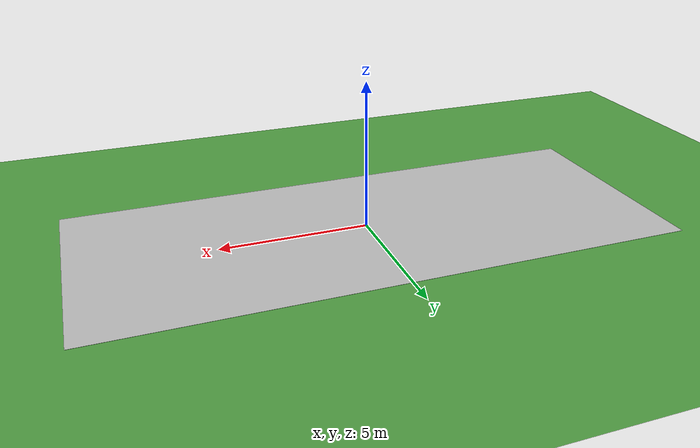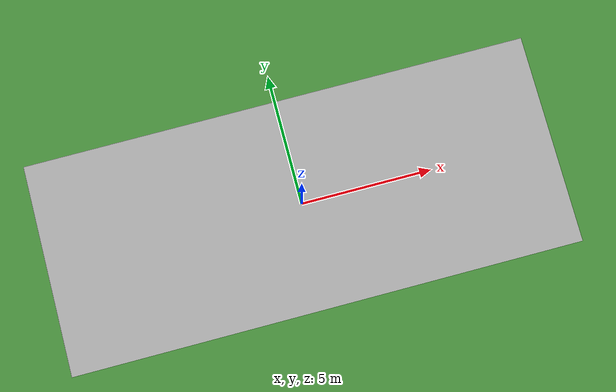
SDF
<?xml version="1.0" encoding="UTF-8"?>
<sdf version='1.5'>
  <world name='default'>
    <light name='sun' type='directional'>
      <cast_shadows>0</cast_shadows>
      <pose>0 0 10 0 -0 0</pose>
      <diffuse>0.8 0.8 0.8 1</diffuse>
      <specular>0.2 0.2 0.2 1</specular>
      <attenuation>
	<range>1000</range>
	<constant>0.9</constant>
	<linear>0.01</linear>
	<quadratic>0.001</quadratic>
      </attenuation>
      <direction>-0.5 0.1 -0.9</direction>
    </light>
    <scene>
      <sky>
	<clouds>
	  <speed>1</speed>
	</clouds>
      </sky>
    </scene>

    <physics type='ode'>
      <real_time_update_rate>1000</real_time_update_rate>
      <ode>
	<solver>
	  <type>quick</type>
	  <iters>70</iters>
	  <sor>1.3</sor>
	  <use_dynamic_moi_rescaling>0</use_dynamic_moi_rescaling>
	</solver>
	<constraints>
	  <cfm>0</cfm>
	  <erp>0.2</erp>
	  <contact_max_correcting_vel>100</contact_max_correcting_vel>
	  <contact_surface_layer>0.001</contact_surface_layer>
	</constraints>
      </ode>
      <max_step_size>0.001</max_step_size>
      <real_time_factor>1</real_time_factor>
      <gravity>0 0 -9.8</gravity>
      <magnetic_field>5.5645e-06 2.28758e-05 -4.23884e-05</magnetic_field>
    </physics>

    <scene>
      <ambient>0.4 0.4 0.4 1</ambient>
      <background>0.7 0.7 0.7 1</background>
      <shadows>1</shadows>
    </scene>

    <spherical_coordinates>
      <surface_model>EARTH_WGS84</surface_model>
      <latitude_deg>0</latitude_deg>
      <longitude_deg>0</longitude_deg>
      <elevation>0</elevation>
      <heading_deg>0</heading_deg>
    </spherical_coordinates>

    <!-- Grass -->
    <include>
      <uri>model://ground_grass</uri>
      <name>ground_grass</name>
      <pose>0 0 0 0 0 0</pose>
    </include>

    <!-- Track -->
    <include>
      <uri>model://ucsd_track_v1</uri>
      <name>ucsd_track_v1</name>
      <pose>0 0 0.001 0 0 0</pose>
    </include>
  </world>
</sdf>

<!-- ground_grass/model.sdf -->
<sdf version='1.4'>
    <model name='ground_grass'>
      <static>1</static>
      <link name='ground_grass'>
        <collision name='collision'>
          <geometry>
            <plane>
              <normal>0 0 1</normal>
              <size>50 50 </size>
            </plane>
          </geometry>
          <surface>
            <friction>
              <ode>
                <mu>100</mu>
                <mu2>50</mu2>
              </ode>
            </friction>
            <bounce/>
            <contact>
              <ode/>
            </contact>
          </surface>
          <max_contacts>10</max_contacts>
        </collision>
        <visual name='visual_ground'>
          <cast_shadows>0</cast_shadows>
	  <pose>0 0 .005 0 0 0</pose>
          <geometry>
            <plane>
              <normal>0 0 1</normal>
              <size>50 50 </size>
            </plane>
          </geometry>
          <material>
            <script>
              <uri>model://ground_grass/materials/scripts</uri>
              <uri>model://ground_grass/materials/textures</uri>
              <name>Floor/Grass</name>
            </script>
          </material>
        </visual>
        <velocity_decay>
          <linear>0</linear>
          <angular>0</angular>
        </velocity_decay>
        <self_collide>0</self_collide>
        <kinematic>0</kinematic>
        <gravity>1</gravity>
      </link>
      <pose>0 0 0 0 -0 0</pose>
    </model>
</sdf>

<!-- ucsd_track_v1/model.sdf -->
<sdf version='1.4'>
    <model name='ucsd_track_v1'>
      <static>1</static>
      <link name='link_track'>
        <collision name='collision'>
          <geometry>
            <plane>
              <normal>0 0 1</normal>
	      <!-- length: 765in = 19.431m -->
	      <!-- width: 316in = 8.0264  -->
              <size>19.431 8.0264 </size>
            </plane>
          </geometry>
          <surface>
            <friction>
              <ode>
                <mu>100</mu>
                <mu2>50</mu2>
              </ode>
            </friction>
            <bounce/>
            <contact>
              <ode/>
            </contact>
          </surface>
          <max_contacts>10</max_contacts>
        </collision>
        <visual name='visual_ground'>
          <cast_shadows>0</cast_shadows>
	  <pose>0 0 .005 0 0 0</pose>
          <geometry>
            <plane>
              <normal>0 0 1</normal>
	      <!-- length: 765in = 19.431m -->
	      <!-- width: 316in = 8.0264  -->
              <size>19.431 8.0264 </size>
            </plane>
          </geometry>
          <material>
            <script>
              <uri>model://ucsd_track_v1/materials/scripts</uri>
              <uri>model://ucsd_track_v1/materials/textures</uri>
              <name>Floor/Image</name>
            </script>
          </material>
        </visual>
        <velocity_decay>
          <linear>0</linear>
          <angular>0</angular>
        </velocity_decay>
        <self_collide>0</self_collide>
        <kinematic>0</kinematic>
        <gravity>1</gravity>
      </link>
      <pose>0 0 0 0 -0 0</pose>
    </model>
</sdf>
